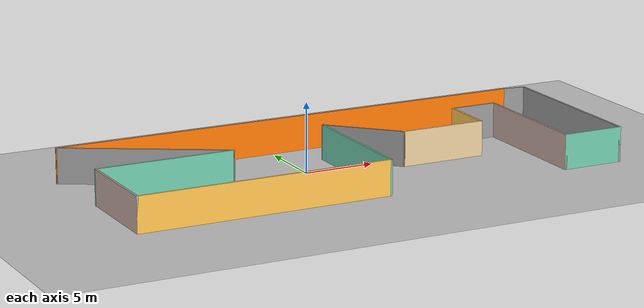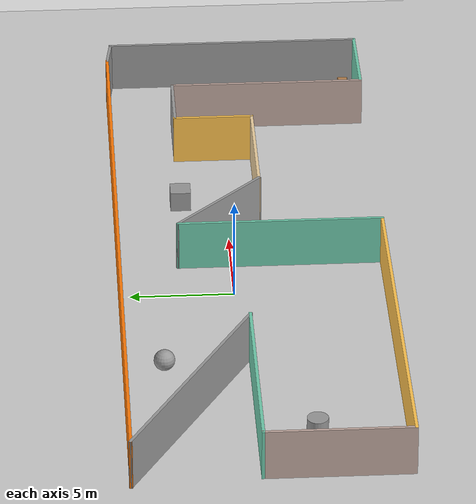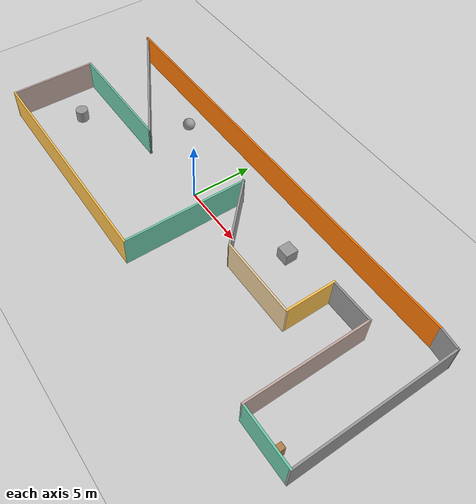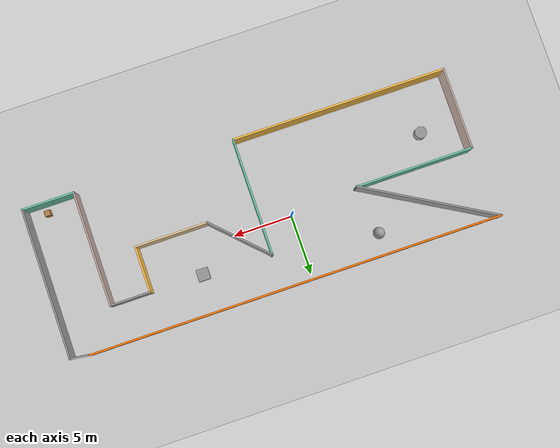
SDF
<sdf version="1.6">
 <world name="default">
  <light name="sun" type="directional">
   <pose>0 0 10 0 -0 0</pose>
   <diffuse>0.8 0.8 0.8 1</diffuse>
   <specular>0.2 0.2 0.2 1</specular>
   <attenuation>
    <range>1000</range>
    <constant>0.9</constant>
    <linear>0.01</linear>
    <quadratic>0.001</quadratic>
   </attenuation>
   <direction>-0.5 0.1 -0.9</direction>
  </light>
  <model name="ground_plane">
   <static>1</static>
   <link name="link">
    <collision name="collision">
     <geometry><plane><normal>0 0 1</normal><size>100 100</size></plane></geometry>
     <surface>
      <contact><collide_bitmask>65535</collide_bitmask></contact>
      <friction><ode><mu>100</mu><mu2>50</mu2></ode></friction>
     </surface>
    </collision>
    <visual name="visual">
     <cast_shadows>0</cast_shadows>
     <geometry><plane><normal>0 0 1</normal><size>100 100</size></plane></geometry>
     <material>
      <script><uri>file://media/materials/scripts/gazebo.material</uri><name>Gazebo/Grey</name></script>
     </material>
    </visual>
   </link>
  </model>
  <gravity>0 0 -9.8</gravity>
  <magnetic_field>6e-06 2.3e-05 -4.2e-05</magnetic_field>
  <atmosphere type="adiabatic"/>
  <physics name="default_physics" default="0" type="ode">
   <max_step_size>0.001</max_step_size>
   <real_time_factor>1</real_time_factor>
   <real_time_update_rate>1000</real_time_update_rate>
  </physics>
  <scene><ambient>0.4 0.4 0.4 1</ambient><background>0.7 0.7 0.7 1</background><shadows>1</shadows></scene>
  <spherical_coordinates>
   <surface_model>EARTH_WGS84</surface_model>
   <latitude_deg>0</latitude_deg>
   <longitude_deg>0</longitude_deg>
   <elevation>0</elevation>
   <heading_deg>0</heading_deg>
  </spherical_coordinates>
  <model name="Building_model)_new">
   <pose>2.27393 -0.901933 0 0 -0 0</pose>
   <link name="Wall_10">
    <collision name="Wall_10_Collision">
     <geometry><box><size>10 0.15 2.5</size></box></geometry>
     <pose>0 0 1.25 0 -0 0</pose>
    </collision>
    <visual name="Wall_10_Visual">
     <pose>0 0 1.25 0 -0 0</pose>
     <geometry><box><size>10 0.15 2.5</size></box></geometry>
     <material>
      <script><uri>file://media/materials/scripts/gazebo.material</uri><name>Gazebo/Grey</name></script>
      <ambient>0.435294 0.796078 0.67451 1</ambient>
     </material>
     <meta><layer>0</layer></meta>
    </visual>
    <pose>0.297043 -1.45794 0 0 -0 1.5708</pose>
   </link>
   <link name="Wall_11">
    <collision name="Wall_11_Collision">
     <geometry><box><size>6 0.15 2.5</size></box></geometry>
     <pose>0 0 1.25 0 -0 0</pose>
    </collision>
    <visual name="Wall_11_Visual">
     <pose>0 0 1.25 0 -0 0</pose>
     <geometry><box><size>6 0.15 2.5</size></box></geometry>
     <material>
      <script><uri>file://media/materials/scripts/gazebo.material</uri><name>Gazebo/Grey</name></script>
      <ambient>1 1 1 1</ambient>
     </material>
     <meta><layer>0</layer></meta>
    </visual>
    <pose>2.36533 1.39877 0 0 0 -0.785398</pose>
   </link>
   <link name="Wall_12">
    <collision name="Wall_12_Collision">
     <geometry><box><size>6.25 0.15 2.5</size></box></geometry>
     <pose>0 0 1.25 0 -0 0</pose>
    </collision>
    <visual name="Wall_12_Visual">
     <pose>0 0 1.25 0 -0 0</pose>
     <geometry><box><size>6.25 0.15 2.5</size></box></geometry>
     <material>
      <script><uri>file://media/materials/scripts/gazebo.material</uri><name>Gazebo/Grey</name></script>
      <ambient>0.921569 0.807843 0.615686 1</ambient>
     </material>
     <meta><layer>0</layer></meta>
    </visual>
    <pose>7.48362 -0.669513 0 0 -0 0</pose>
   </link>
   <link name="Wall_13">
    <collision name="Wall_13_Collision">
     <geometry><box><size>4 0.15 2.5</size></box></geometry>
     <pose>0 0 1.25 0 -0 0</pose>
    </collision>
    <visual name="Wall_13_Visual">
     <pose>0 0 1.25 0 -0 0</pose>
     <geometry><box><size>4 0.15 2.5</size></box></geometry>
     <material>
      <script><uri>file://media/materials/scripts/gazebo.material</uri><name>Gazebo/Grey</name></script>
      <ambient>1 0.764706 0.305882 1</ambient>
     </material>
     <meta><layer>0</layer></meta>
    </visual>
    <pose>10.5336 1.25549 0 0 -0 1.5708</pose>
   </link>
   <link name="Wall_14">
    <collision name="Wall_14_Collision">
     <geometry><box><size>3.5 0.15 2.5</size></box></geometry>
     <pose>0 0 1.25 0 -0 0</pose>
    </collision>
    <visual name="Wall_14_Visual">
     <pose>0 0 1.25 0 -0 0</pose>
     <geometry><box><size>3.5 0.15 2.5</size></box></geometry>
     <material>
      <script><uri>file://media/materials/scripts/gazebo.material</uri><name>Gazebo/Grey</name></script>
      <ambient>1 1 1 1</ambient>
     </material>
     <meta><layer>0</layer></meta>
    </visual>
    <pose>12.2086 3.18049 0 0 -0 0</pose>
   </link>
   <link name="Wall_15">
    <collision name="Wall_15_Collision">
     <geometry><box><size>9.75 0.15 2.5</size></box></geometry>
     <pose>0 0 1.25 0 -0 0</pose>
    </collision>
    <visual name="Wall_15_Visual">
     <pose>0 0 1.25 0 -0 0</pose>
     <geometry><box><size>9.75 0.15 2.5</size></box></geometry>
     <material>
      <script><uri>file://media/materials/scripts/gazebo.material</uri><name>Gazebo/Grey</name></script>
      <ambient>0.760784 0.662745 0.627451 1</ambient>
     </material>
     <meta><layer>0</layer></meta>
    </visual>
    <pose>13.8836 -1.61951 0 0 0 -1.5708</pose>
   </link>
   <link name="Wall_16">
    <collision name="Wall_16_Collision">
     <geometry><box><size>4.5 0.15 2.5</size></box></geometry>
     <pose>0 0 1.25 0 -0 0</pose>
    </collision>
    <visual name="Wall_16_Visual">
     <pose>0 0 1.25 0 -0 0</pose>
     <geometry><box><size>4.5 0.15 2.5</size></box></geometry>
     <material>
      <script><uri>file://media/materials/scripts/gazebo.material</uri><name>Gazebo/Grey</name></script>
      <ambient>0.435294 0.796078 0.67451 1</ambient>
     </material>
     <meta><layer>0</layer></meta>
    </visual>
    <pose>16.0586 -6.41951 0 0 -0 0</pose>
   </link>
   <link name="Wall_17">
    <collision name="Wall_17_Collision">
     <geometry><box><size>12.75 0.15 2.5</size></box></geometry>
     <pose>0 0 1.25 0 -0 0</pose>
    </collision>
    <visual name="Wall_17_Visual">
     <pose>0 0 1.25 0 -0 0</pose>
     <geometry><box><size>12.75 0.15 2.5</size></box></geometry>
     <material>
      <script><uri>file://media/materials/scripts/gazebo.material</uri><name>Gazebo/Grey</name></script>
      <ambient>1 1 1 1</ambient>
     </material>
     <meta><layer>0</layer></meta>
    </visual>
    <pose>18.2336 -0.119513 0 0 -0 1.5708</pose>
   </link>
   <link name="Wall_18">
    <collision name="Wall_18_Collision">
     <geometry><box><size>0.15 0.15 2.5</size></box></geometry>
     <pose>0 0 1.25 0 -0 0</pose>
    </collision>
    <visual name="Wall_18_Visual">
     <pose>0 0 1.25 0 -0 0</pose>
     <geometry><box><size>0.15 0.15 2.5</size></box></geometry>
     <material>
      <script><uri>file://media/materials/scripts/gazebo.material</uri><name>Gazebo/Grey</name></script>
      <ambient>1 1 1 1</ambient>
     </material>
     <meta><layer>0</layer></meta>
    </visual>
    <pose>18.2336 6.18049 0 0 -0 0</pose>
   </link>
   <link name="Wall_19">
    <collision name="Wall_19_Collision">
     <geometry><box><size>1.76291 0.15 2.5</size></box></geometry>
     <pose>0 0 1.25 0 -0 0</pose>
    </collision>
    <visual name="Wall_19_Visual">
     <pose>0 0 1.25 0 -0 0</pose>
     <geometry><box><size>1.76291 0.15 2.5</size></box></geometry>
     <material>
      <script><uri>file://media/materials/scripts/gazebo.material</uri><name>Gazebo/Grey</name></script>
      <ambient>1 1 1 1</ambient>
     </material>
     <meta><layer>0</layer></meta>
    </visual>
    <pose>17.4341 6.28627 0 0 -0 3.01004</pose>
   </link>
   <link name="Wall_5">
    <collision name="Wall_5_Collision">
     <geometry><box><size>35 0.15 2.5</size></box></geometry>
     <pose>0 0 1.25 0 -0 0</pose>
    </collision>
    <visual name="Wall_5_Visual">
     <pose>0 0 1.25 0 -0 0</pose>
     <geometry><box><size>35 0.15 2.5</size></box></geometry>
     <material>
      <script><uri>file://media/materials/scripts/gazebo.material</uri><name>Gazebo/Grey</name></script>
      <ambient>0.996078 0.47451 0.0196078 1</ambient>
     </material>
     <meta><layer>0</layer></meta>
    </visual>
    <pose>-0.790358 6.39206 0 0 -0 3.14159</pose>
   </link>
   <link name="Wall_6">
    <collision name="Wall_6_Collision">
     <geometry><box><size>12 0.15 2.5</size></box></geometry>
     <pose>0 0 1.25 0 -0 0</pose>
    </collision>
    <visual name="Wall_6_Visual">
     <pose>0 0 1.25 0 -0 0</pose>
     <geometry><box><size>12 0.15 2.5</size></box></geometry>
     <material>
      <script><uri>file://media/materials/scripts/gazebo.material</uri><name>Gazebo/Grey</name></script>
      <ambient>1 1 1 1</ambient>
     </material>
     <meta><layer>0</layer></meta>
    </visual>
    <pose>-13.0842 3.42956 0 0 0 -0.523599</pose>
   </link>
   <link name="Wall_7">
    <collision name="Wall_7_Collision">
     <geometry><box><size>10 0.15 2.5</size></box></geometry>
     <pose>0 0 1.25 0 -0 0</pose>
    </collision>
    <visual name="Wall_7_Visual">
     <pose>0 0 1.25 0 -0 0</pose>
     <geometry><box><size>10 0.15 2.5</size></box></geometry>
     <material>
      <script><uri>file://media/materials/scripts/gazebo.material</uri><name>Gazebo/Grey</name></script>
      <ambient>0.435294 0.796078 0.67451 1</ambient>
     </material>
     <meta><layer>0</layer></meta>
    </visual>
    <pose>-12.878 0.467061 0 0 -0 3.14159</pose>
   </link>
   <link name="Wall_8">
    <collision name="Wall_8_Collision">
     <geometry><box><size>7 0.15 2.5</size></box></geometry>
     <pose>0 0 1.25 0 -0 0</pose>
    </collision>
    <visual name="Wall_8_Visual">
     <pose>0 0 1.25 0 -0 0</pose>
     <geometry><box><size>7 0.15 2.5</size></box></geometry>
     <material>
      <script><uri>file://media/materials/scripts/gazebo.material</uri><name>Gazebo/Grey</name></script>
      <ambient>0.760784 0.662745 0.627451 1</ambient>
     </material>
     <meta><layer>0</layer></meta>
    </visual>
    <pose>-17.803 -2.95794 0 0 0 -1.5708</pose>
   </link>
   <link name="Wall_9">
    <collision name="Wall_9_Collision">
     <geometry><box><size>18.25 0.15 2.5</size></box></geometry>
     <pose>0 0 1.25 0 -0 0</pose>
    </collision>
    <visual name="Wall_9_Visual">
     <pose>0 0 1.25 0 -0 0</pose>
     <geometry><box><size>18.25 0.15 2.5</size></box></geometry>
     <material>
      <script><uri>file://media/materials/scripts/gazebo.material</uri><name>Gazebo/Grey</name></script>
      <ambient>1 0.764706 0.305882 1</ambient>
     </material>
     <meta><layer>0</layer></meta>
    </visual>
    <pose>-8.75296 -6.38294 0 0 -0 0</pose>
   </link>
   <static>1</static>
  </model>
  <model name="unit_sphere">
   <pose>-6.35621 3.61188 0.5 0 -0 0</pose>
   <link name="link">
    <inertial>
     <mass>1</mass>
     <inertia><ixx>0.1</ixx><ixy>0</ixy><ixz>0</ixz><iyy>0.1</iyy><iyz>0</iyz><izz>0.1</izz></inertia>
    </inertial>
    <collision name="collision"><geometry><sphere><radius>0.5</radius></sphere></geometry></collision>
    <visual name="visual">
     <geometry><sphere><radius>0.5</radius></sphere></geometry>
     <material>
      <script><name>Gazebo/Grey</name><uri>file://media/materials/scripts/gazebo.material</uri></script>
     </material>
    </visual>
   </link>
  </model>
  <model name="unit_cylinder">
   <pose>-12.3166 -3.107 0.499998 3e-06 -4e-06 0</pose>
   <link name="link">
    <inertial>
     <mass>1</mass>
     <inertia><ixx>0.145833</ixx><ixy>0</ixy><ixz>0</ixz><iyy>0.145833</iyy><iyz>0</iyz><izz>0.125</izz></inertia>
    </inertial>
    <collision name="collision">
     <geometry><cylinder><radius>0.5</radius><length>1</length></cylinder></geometry>
    </collision>
    <visual name="visual">
     <geometry><cylinder><radius>0.5</radius><length>1</length></cylinder></geometry>
     <material>
      <script><name>Gazebo/Grey</name><uri>file://media/materials/scripts/gazebo.material</uri></script>
     </material>
    </visual>
   </link>
  </model>
  <model name="unit_box">
   <pose>8.39427 2.22001 0.499995 0 1e-05 0</pose>
   <link name="link">
    <inertial>
     <mass>1</mass>
     <inertia>
      <ixx>0.166667</ixx>
      <ixy>0</ixy>
      <ixz>0</ixz>
      <iyy>0.166667</iyy>
      <iyz>0</iyz>
      <izz>0.166667</izz>
     </inertia>
    </inertial>
    <collision name="collision"><geometry><box><size>1 1 1</size></box></geometry></collision>
    <visual name="visual">
     <geometry><box><size>1 1 1</size></box></geometry>
     <material>
      <script><name>Gazebo/Grey</name><uri>file://media/materials/scripts/gazebo.material</uri></script>
     </material>
    </visual>
   </link>
  </model>
  <model name="cabinet">
   <static>1</static>
   <link name="cabinet_bottom_plate">
    <inertial>
     <pose>0 0 -1 0 -0 0</pose>
     <inertia><ixx>2.05</ixx><ixy>0</ixy><ixz>0</ixz><iyy>2.05</iyy><iyz>0</iyz><izz>2.05</izz></inertia>
     <mass>25</mass>
    </inertial>
    <collision name="cabinet_bottom_plate_geom">
     <pose>0 0 0.01 0 -0 0</pose>
     <geometry><box><size>0.45 0.45 0.02</size></box></geometry>
    </collision>
    <visual name="cabinet_bottom_plate_geom_visual">
     <pose>0 0 0.01 0 -0 0</pose>
     <geometry><box><size>0.45 0.45 0.02</size></box></geometry>
     <material>
      <script><uri>file://media/materials/scripts/gazebo.material</uri><name>Gazebo/Wood</name></script>
     </material>
    </visual>
    <collision name="cabinet_bottom_plate_geom_cabinet_back_plate">
     <pose>0.235 0 0.51 0 -0 0</pose>
     <geometry><box><size>0.02 0.45 1.02</size></box></geometry>
    </collision>
    <visual name="cabinet_bottom_plate_geom_cabinet_back_plate_visual">
     <pose>0.235 0 0.51 0 -0 0</pose>
     <geometry><box><size>0.02 0.45 1.02</size></box></geometry>
     <material>
      <script><uri>file://media/materials/scripts/gazebo.material</uri><name>Gazebo/Wood</name></script>
     </material>
    </visual>
    <collision name="cabinet_bottom_plate_geom_cabinet_left_plate">
     <pose>0 0.235 0.51 0 -0 0</pose>
     <geometry><box><size>0.45 0.02 1.02</size></box></geometry>
    </collision>
    <visual name="cabinet_bottom_plate_geom_cabinet_left_plate_visual">
     <pose>0 0.235 0.51 0 -0 0</pose>
     <geometry><box><size>0.45 0.02 1.02</size></box></geometry>
     <material>
      <script><uri>file://media/materials/scripts/gazebo.material</uri><name>Gazebo/Wood</name></script>
     </material>
    </visual>
    <collision name="cabinet_bottom_plate_geom_cabinet_middle_plate">
     <pose>0 0 0.51 0 -0 0</pose>
     <geometry><box><size>0.45 0.45 0.02</size></box></geometry>
    </collision>
    <visual name="cabinet_bottom_plate_geom_cabinet_middle_plate_visual">
     <pose>0 0 0.51 0 -0 0</pose>
     <geometry><box><size>0.45 0.45 0.02</size></box></geometry>
     <material>
      <script><uri>file://media/materials/scripts/gazebo.material</uri><name>Gazebo/Wood</name></script>
     </material>
    </visual>
    <collision name="cabinet_bottom_plate_geom_cabinet_right_plate">
     <pose>0 -0.235 0.51 0 -0 0</pose>
     <geometry><box><size>0.45 0.02 1.02</size></box></geometry>
    </collision>
    <visual name="cabinet_bottom_plate_geom_cabinet_right_plate_visual">
     <pose>0 -0.235 0.51 0 -0 0</pose>
     <geometry><box><size>0.45 0.02 1.02</size></box></geometry>
     <material>
      <script><uri>file://media/materials/scripts/gazebo.material</uri><name>Gazebo/Wood</name></script>
     </material>
    </visual>
    <collision name="cabinet_bottom_plate_geom_cabinet_top_plate">
     <pose>0 0 1.01 0 -0 0</pose>
     <geometry><box><size>0.45 0.45 0.02</size></box></geometry>
    </collision>
    <visual name="cabinet_bottom_plate_geom_cabinet_top_plate_visual">
     <pose>0 0 1.01 0 -0 0</pose>
     <geometry><box><size>0.45 0.45 0.02</size></box></geometry>
     <material>
      <script><uri>file://media/materials/scripts/gazebo.material</uri><name>Gazebo/Wood</name></script>
     </material>
    </visual>
   </link>
   <pose>18.8974 -6.63646 0 0 -0 0</pose>
  </model>
 </world>
</sdf>
